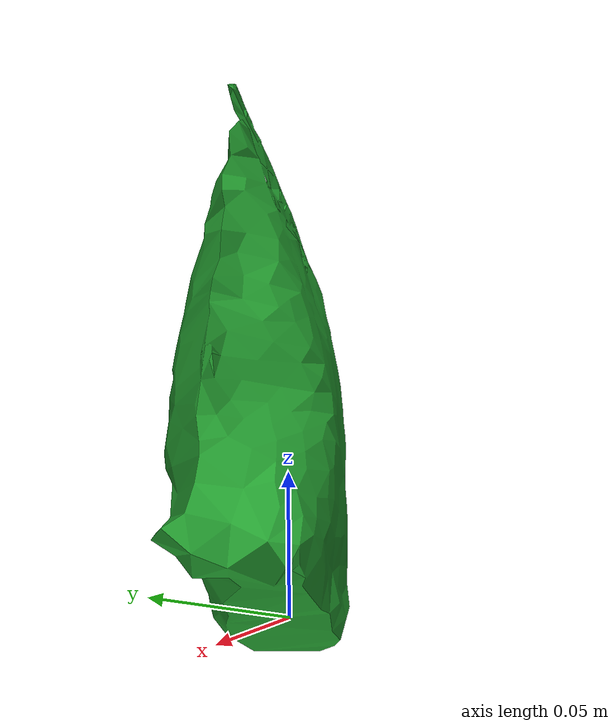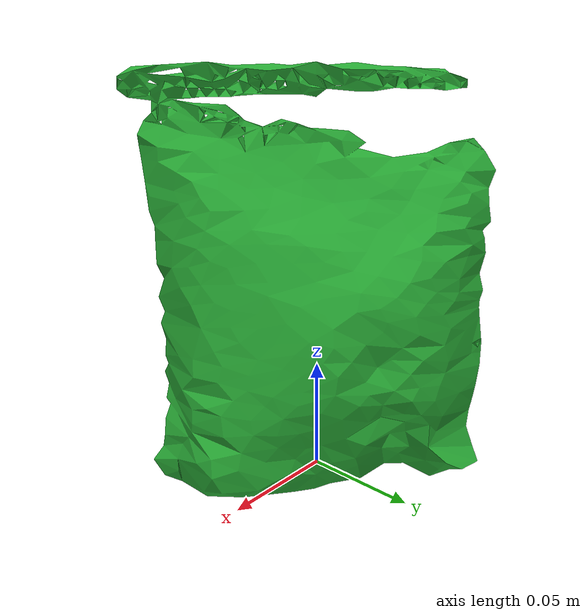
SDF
<?xml version="1.0" ?>
<sdf version="1.4">
  <model name="feline_greenies_dental_treats">
    <link name="feline_greenies_dental_treats_link">
      <inertial>
        <pose>0 0 0 0 0 0</pose>
        <mass>0.08</mass>
      </inertial>

      <visual name="feline_greenies_dental_treats_visual">
        <pose>0 0 0 0 0 0</pose>
        <material>
          <script>
            <uri>model://feline_greenies_dental_treats/materials/scripts</uri>
            <uri>model://feline_greenies_dental_treats/materials/textures</uri>
            <name>feline_greenies_dental_treats</name>
          </script>
        </material>
        <geometry>
          <mesh>
            <uri>model://feline_greenies_dental_treats/meshes/feline_greenies_dental_treats.dae</uri>
          </mesh>
        </geometry>
      </visual>

      <collision name="feline_greenies_dental_treats_collision">
        <pose>0 0 0 0 0 0</pose>
        <geometry>
          <mesh>
            <uri>model://feline_greenies_dental_treats/meshes/feline_greenies_dental_treats.dae</uri>
          </mesh>
        </geometry>
        <surface>
          <friction>
            <ode>
              <mu>0.8</mu>
              <mu2>0.8</mu2>
            </ode>
          </friction>
        </surface>
      </collision>

    </link>
  </model>
</sdf>
